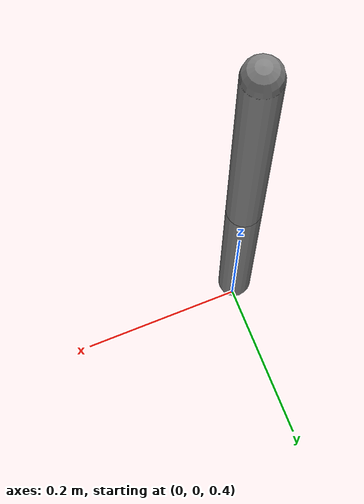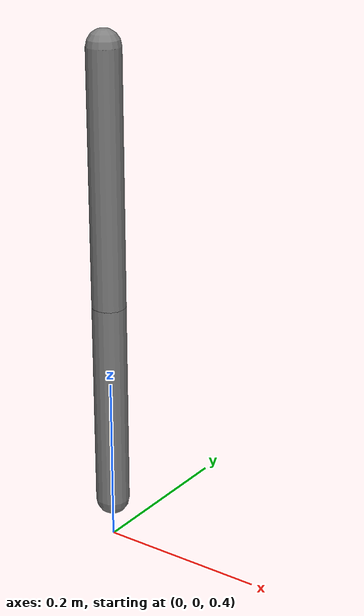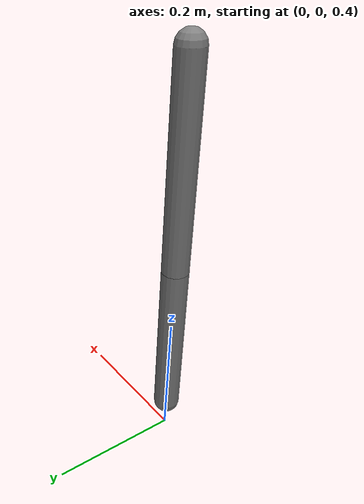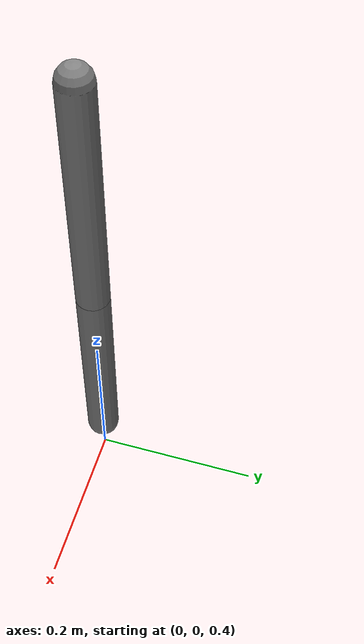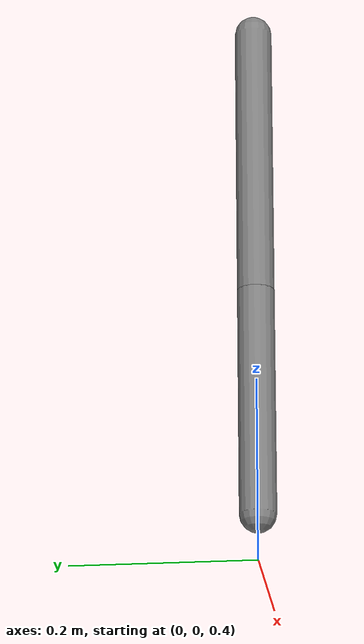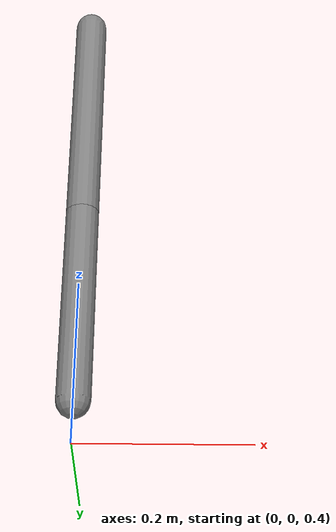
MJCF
<!-- BROKEN (debugging clinic, case 3): the elbow will not bend, whatever torque is applied. -->
<mujoco model="degrees">
  <worldbody>
    <light pos="0 -1 2" dir="0 0.5 -1"/>
    <body name="upper" pos="0 0 1">
      <joint name="shoulder" type="hinge" axis="0 1 0" range="-1.57 1.57"/>
      <geom type="capsule" fromto="0 0 0 0 0 -0.3" size="0.02" mass="0.5"/>
      <body name="lower" pos="0 0 -0.3">
        <joint name="elbow" type="hinge" axis="0 1 0" range="0 2.5"/>
        <geom type="capsule" fromto="0 0 0 0 0 -0.25" size="0.02" mass="0.3"/>
      </body>
    </body>
  </worldbody>
  <actuator>
    <motor name="elbow" joint="elbow" ctrlrange="-5 5"/>
  </actuator>
</mujoco>
